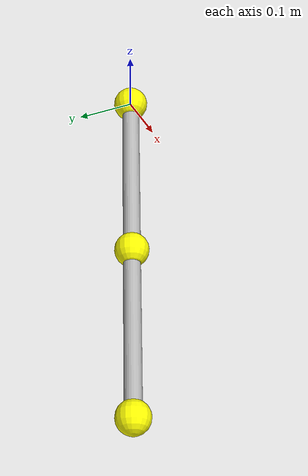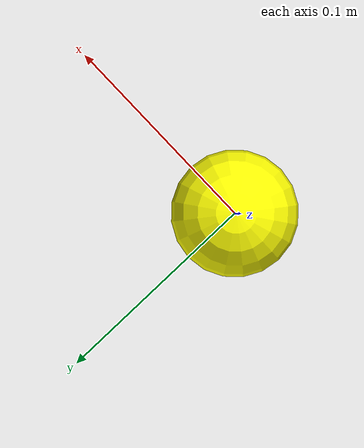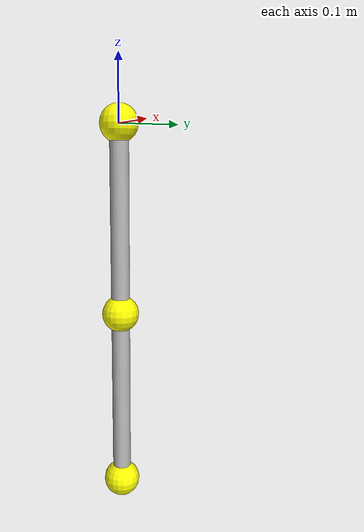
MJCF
<mujoco model="2D_UpperLimb">

  <compiler inertiafromgeom = "auto"
            angle 					= "radian" />

						<option  timestep  = '0.0001'
										iterations = '50'
										    solver = 'PGS'
										integrator = 'Euler'
										   gravity = "0 0 -9.81"
									   collision = 'all' >

							<flag energy = 'enable'/>

						</option>

  <asset>
    <!-- Texture of the surrounding sky box
         setting everything as white-ish color for better visualization -->

		<texture type		  = "skybox"
             builtin  = "checker"
             rgb1 		= ".1 .2 .3"
             rgb2 		= ".2 .3 .4"
             width	  = "200"
            height 	  = "200"
              mark 	  = "edge"/>

     <material name = "JointColor" rgba = "1.0 1.0 0.0 1" />
     <material name = "LimbColor"  rgba = "0.7 0.7 0.7 1" />
  </asset>

  <worldbody>

		<body name='cameramover' mocap='true' pos='0 0 0'>
				<camera name='mycamera' pos='0.0 2.0 2.0' euler='1.5707 0 0'/>
  	</body>

		<!-- ============ UPPER ARM START =============== -->
		<body name="upperArm" pos="0 0 0" euler="0 0 0">
			<inertial pos='0 0 -0.129'     mass='1.595'         diaginertia='0.011917 0.011937 0.001325'/>
			<geom name='shoulderGEOM' type='sphere' pos='0 0 0' material='JointColor' size='0.0294' mass='0'/>
			<joint name='shoulderFlexExt' ref='0' type='hinge' stiffness='0' pos='0 0 0' axis='0 -1 0' />
			<joint name='shoulderAddAbd' ref='0'  type='hinge' stiffness='0' pos='0 0 0' axis='-1 0 0' />
			<joint name='shoulderMedLat' ref='0'  type='hinge' stiffness='0' pos='0 0 0' axis=' 0 0 1' />
			<site name='upperArmCOM' pos='0 0 -0.129' />
			<geom type='cylinder' fromto='0 0 0 0 0 -0.294' material='LimbColor' mass='0' size='0.0147'/>
		<!-- ============ UPPER ARM END   =============== -->

      <!-- ============ FORE ARM START =============== -->
			<body name='foreArm' pos='0 0 -0.294' euler='0 0 0'>
				<inertial pos='0 0 -0.112' mass='0.869'             diaginertia='0.004765 0.004855 0.000472'/>
				<geom name='elbowGEOM' type='sphere' pos='0 0 0' material='JointColor' size='0.0294' mass='0'/>
				<joint name='elbow' ref='0' type='hinge' stiffness='0' pos='0 0 0' axis='0 -1 0'/>
				<geom type='cylinder' fromto='0 0 0 0 0 -0.291' material='LimbColor' mass='0' size='0.0147'/>
				<site name='foreArmCOM' pos='0 0 -0.112' />
				<geom name='EEGEOM' type='sphere' pos='0 0 -0.291' material='JointColor' size='0.0294' mass='0.0'/>
			</body>
		</body>

  </worldbody>

	<actuator>

		<motor joint = 'shoulderFlexExt' name = 'shoulderFlexExtTorqueMotor' forcelimited = 'false'/>
		<motor joint = 'shoulderAddAbd'  name = 'shoulderAddAbdTorqueMotor'  forcelimited = 'false'/>
		<motor joint = 'shoulderMedLat'  name = 'shoulderMedLatTorqueMotor'  forcelimited = 'false'/>
    <motor joint = 'elbow'           name = 'elbowTorqueMotor'           forcelimited = 'false'/>

  </actuator>

</mujoco>
